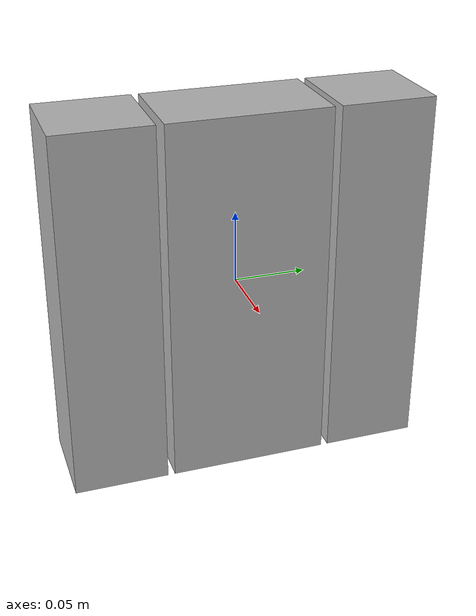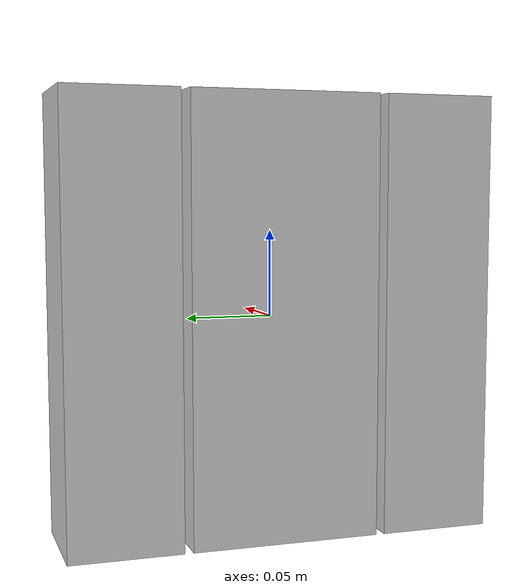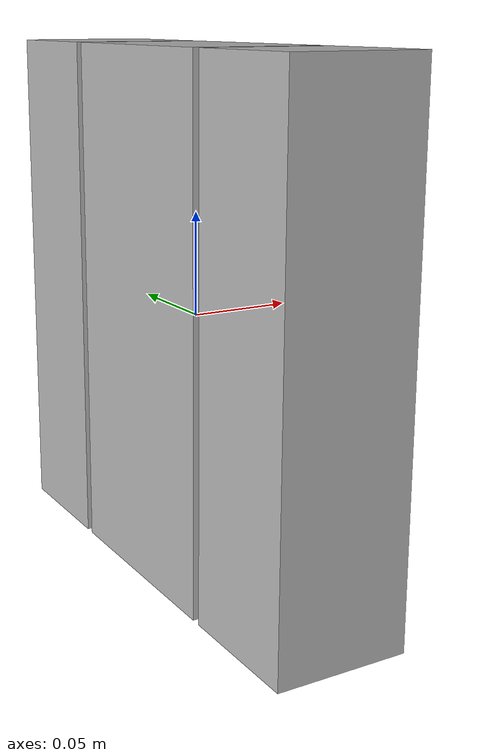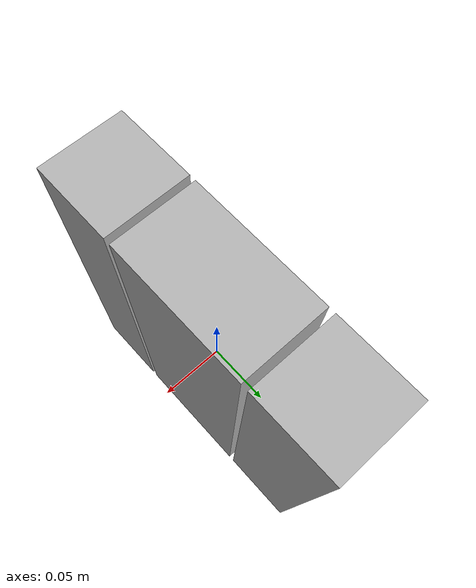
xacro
<?xml version="1.0" ?>
<robot name="tars_robot" xmlns:xacro="http://www.ros.org/wiki/xacro">

  <xacro:include filename="$(find tars_robot_description)/urdf/materials.xacro" />
  <xacro:include filename="$(find tars_robot_description)/urdf/tars_robot.trans" />
  <xacro:include filename="$(find tars_robot_description)/urdf/tars_robot.gazebo" />

  <!-- Dimensions (in meters) -->
  <xacro:property name="leg_width" value="0.065"/>
  <xacro:property name="leg_depth" value="0.065"/>
  <xacro:property name="leg_height" value="0.255"/>

  <xacro:property name="center_width" value="0.11"/>
  <xacro:property name="center_depth" value="0.065"/>
  <xacro:property name="center_height" value="0.255"/>

  <xacro:property name="gap" value="0.005"/> <!-- Gap between legs and center -->

  <link name="dummy_link"></link>
  <joint name="dummy_joint" type="fixed">
    <parent link="dummy_link"/>
    <child link="base_link"/>
  </joint>

  <!-- IMU Link -->
  <link name="imu_link">
    <inertial>
      <mass value="0.01"/>
      <inertia ixx="0.0001" ixy="0" ixz="0" iyy="0.0001" iyz="0" izz="0.0001"/>
    </inertial>
  </link>
  <joint name="imu_joint" type="fixed">
    <parent link="base_link"/>
    <child link="imu_link"/>
    <origin xyz="0 0 0" rpy="0 0 0"/>
  </joint>

  <!-- CENTER BODY (Base Link) -->
  <link name="base_link">
    <inertial>
      <mass value="1.5"/> <!-- center is heavy than the legs  -->
      <origin xyz="0 0 -0.08" rpy="0 0 0"/> <!-- Center of mass is a littlel bit down so to account for movement -->
      <inertia ixx="${(1/12)*1.5*(center_height*center_height + center_depth*center_depth)}"
               iyy="${(1/12)*1.5*(center_height*center_height + center_width*center_width)}"
               izz="${(1/12)*1.5*(center_width*center_width + center_depth*center_depth)}"
               ixy="0" ixz="0" iyz="0"/>
    </inertial>
    <visual>
      <origin xyz="0 0 0" rpy="0 0 0"/>
      <geometry>
        <box size="${center_depth} ${center_width} ${center_height}"/>
      </geometry>
      <material name="silver"/>
    </visual>
    <collision>
      <origin xyz="0 0 0" rpy="0 0 0"/>
      <geometry>
        <box size="${center_depth} ${center_width} ${center_height}"/>
      </geometry>
    </collision>
  </link>

  <!-- This link moves vertically relative to the body (Prismatic Joint) -->

  <link name="leg_carriage">
    <inertial>
      <mass value="0.1"/>
      <origin xyz="0 0 0" rpy="0 0 0"/>
      <inertia ixx="0.0001" iyy="0.0001" izz="0.0001" ixy="0" ixz="0" iyz="0"/>
    </inertial>
  </link>

  <joint name="joint_center_linear" type="prismatic">
    <origin xyz="0 0 -0.0025" rpy="0 0 0"/>
    <parent link="base_link"/>
    <child link="leg_carriage"/>
    <axis xyz="0 0 1"/> <!-- Moves up/down -->

    <limit lower="-0.046" upper="0.046" effort="100.0" velocity="1.0"/>
    <dynamics damping="10.0" friction="5.0"/>
  </joint>

  <!-- LEFT LEG -->

  <link name="left_leg">
    <inertial>
      <mass value="0.4"/> <!-- legs are lighter than the center body -->
      <origin xyz="0 0 ${0.04 - leg_height/2 - 0.05}" rpy="0 0 0"/>

      <inertia ixx="${(1/12)*0.4*(leg_height*leg_height + leg_depth*leg_depth)}"
               iyy="${(1/12)*0.4*(leg_height*leg_height + leg_width*leg_width)}"
               izz="${(1/12)*0.4*(leg_width*leg_width + leg_depth*leg_depth)}"
               ixy="0" ixz="0" iyz="0"/>
    </inertial>
    <visual>
      <origin xyz="0 0 ${0.04 - leg_height/2}" rpy="0 0 0"/>
      <geometry>
        <box size="${leg_depth} ${leg_width} ${leg_height}"/>
      </geometry>
      <material name="silver"/>
    </visual>
    <collision>
      <origin xyz="0 0 ${0.04 - leg_height/2}" rpy="0 0 0"/>
      <geometry>
        <box size="${leg_depth} ${leg_width} ${leg_height}"/>
      </geometry>
    </collision>
  </link>

  <joint name="joint_left_leg" type="revolute">
    <origin xyz="0 0.0925 0.09" rpy="0 0 0"/>
    <parent link="leg_carriage"/>
    <child link="left_leg"/>
    <axis xyz="0 1 0"/>
    <limit lower="-3.14" upper="3.14" effort="100.0" velocity="2.0"/>
    <dynamics damping="5.0" friction="2.0"/>
  </joint>

  <!-- RIGHT LEG -->
  <link name="right_leg">
    <inertial>
      <mass value="0.4"/>   <!-- legs are lighter than the center body -->
      <origin xyz="0 0 ${0.04 - leg_height/2 - 0.05}" rpy="0 0 0"/>
      <inertia ixx="${(1/12)*0.4*(leg_height*leg_height + leg_depth*leg_depth)}"
               iyy="${(1/12)*0.4*(leg_height*leg_height + leg_width*leg_width)}"
               izz="${(1/12)*0.4*(leg_width*leg_width + leg_depth*leg_depth)}"
               ixy="0" ixz="0" iyz="0"/>
    </inertial>
    <visual>
      <origin xyz="0 0 ${0.04 - leg_height/2}" rpy="0 0 0"/>
      <geometry>
        <box size="${leg_depth} ${leg_width} ${leg_height}"/>
      </geometry>
      <material name="silver"/>
    </visual>
    <collision>
      <origin xyz="0 0 ${0.04 - leg_height/2}" rpy="0 0 0"/>
      <geometry>
        <box size="${leg_depth} ${leg_width} ${leg_height}"/>
      </geometry>
    </collision>
  </link>

  <joint name="joint_right_leg" type="revolute">
    <origin xyz="0 -0.0925 0.09" rpy="0 0 0"/>
    <parent link="leg_carriage"/>
    <child link="right_leg"/>
    <axis xyz="0 1 0"/>
    <limit lower="-3.14" upper="3.14" effort="100.0" velocity="2.0"/>
    <dynamics damping="5.0" friction="2.0"/>
  </joint>

  <ros2_control name="GazeboSystem" type="system">
    <hardware>
      <plugin>ign_ros2_control/IgnitionSystem</plugin>
    </hardware>
    <joint name="joint_center_linear">
      <command_interface name="position">
        <param name="min">-0.046</param>
        <param name="max">0.046</param>
      </command_interface>
      <state_interface name="position"/>
      <state_interface name="velocity"/>
    </joint>
    <joint name="joint_left_leg">
      <command_interface name="position">
        <param name="min">-3.14</param>
        <param name="max">3.14</param>
      </command_interface>
      <state_interface name="position"/>
      <state_interface name="velocity"/>
    </joint>
    <joint name="joint_right_leg">
      <command_interface name="position">
        <param name="min">-3.14</param>
        <param name="max">3.14</param>
      </command_interface>
      <state_interface name="position"/>
      <state_interface name="velocity"/>
    </joint>
  </ros2_control>

</robot>

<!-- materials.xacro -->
<robot name="tars_robot" xmlns:xacro="http://www.ros.org/wiki/xacro" >

<material name="silver">
  <color rgba="0.700 0.700 0.700 1.000"/>
</material>

</robot>

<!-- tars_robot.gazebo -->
<robot name="tars_robot" xmlns:xacro="http://www.ros.org/wiki/xacro" >

  <xacro:property name="body_color" value="Gazebo/Silver" />

  <!-- Gazebo Fortress plugin -->
  <gazebo>
    <plugin filename="libign_ros2_control-system.so" name="ign_ros2_control::IgnitionROS2ControlPlugin">
      <parameters>$(find tars_robot_description)/config/controllers2.yaml</parameters>
    </plugin>
    <plugin filename="libignition-gazebo-pose-publisher-system.so" name="ignition::gazebo::systems::PosePublisher">
      <publish_link_pose>false</publish_link_pose>
      <use_pose_vector_msg>true</use_pose_vector_msg>
      <static_publisher>false</static_publisher>
      <static_update_frequency>1</static_update_frequency>
    </plugin>
  </gazebo>

  <!-- Base Link Physics and Visual Configuration -->
  <gazebo reference="base_link">
    <material>${body_color}</material>
    <mu1>0.8</mu1>
    <mu2>0.8</mu2>
    <kp>1000000.0</kp> <!-- Stiffness (1e6 = somewhat soft) -->
    <kd>100.0</kd>     <!-- Damping (100 = high damping) -->
    <self_collide>false</self_collide>
    <gravity>true</gravity>
  </gazebo>

  <gazebo reference="imu_link">
    <gravity>true</gravity>
    <sensor name="imu_sensor" type="imu">
      <always_on>1</always_on>
      <update_rate>100</update_rate>
      <visualize>true</visualize>
      <topic>imu</topic>
    </sensor>
  </gazebo>

  <!-- Additional Links Configuration -->
  <gazebo reference="leg_carriage">
    <material>${body_color}</material>
    <mu1>0.2</mu1>
    <mu2>0.2</mu2>
    <self_collide>false</self_collide>
  </gazebo>

  <gazebo reference="left_leg">
    <material>${body_color}</material>
    <mu1>1.0</mu1> <!-- Higher friction for feet -->
    <mu2>1.0</mu2>
    <kp>1000000.0</kp>
    <kd>100.0</kd>
    <self_collide>true</self_collide>
  </gazebo>

  <gazebo reference="right_leg">
    <material>${body_color}</material>
    <mu1>1.0</mu1>
    <mu2>1.0</mu2>
    <kp>1000000.0</kp>
    <kd>100.0</kd>
    <self_collide>true</self_collide>
  </gazebo>

  <!-- Physics Configuration for Gazebo Fortress -->
  <gazebo>
    <physics type="ode">
      <max_step_size>0.001</max_step_size>
      <real_time_update_rate>1000</real_time_update_rate>
    </physics>
  </gazebo>

</robot>
